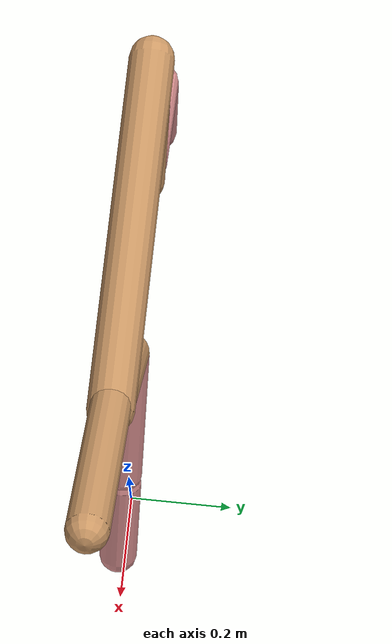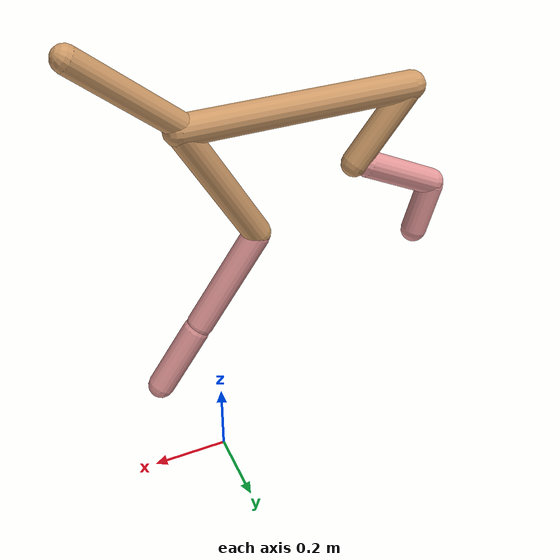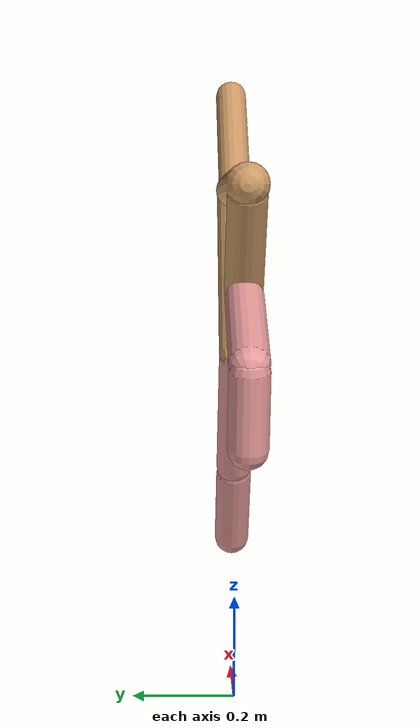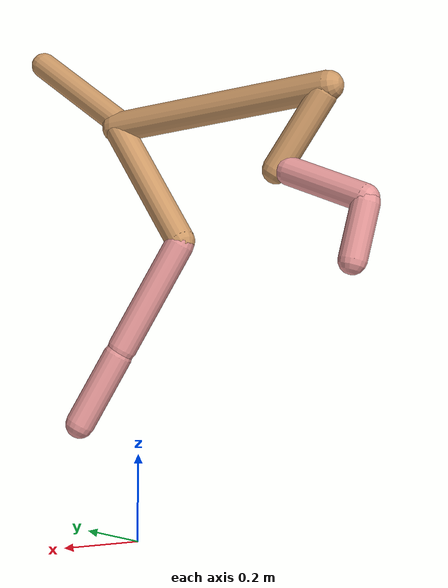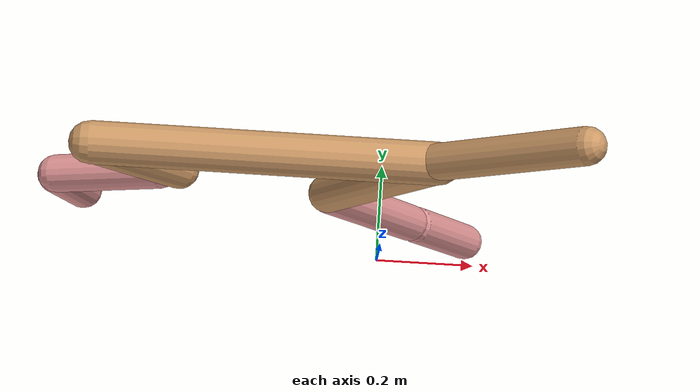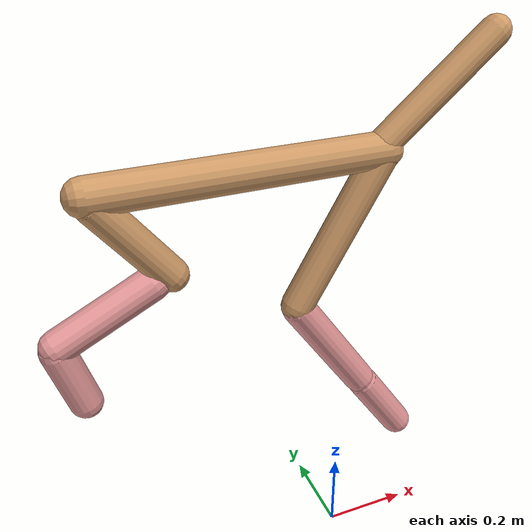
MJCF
<mujoco model="cheetah">
  <compiler angle="radian" coordinate="local" inertiafromgeom="true" settotalmass="14" />
  <default>
    <joint armature=".1" damping=".01" limited="true" solimplimit="0 .8 .03" solreflimit=".02 1" stiffness="8" />
    <geom conaffinity="0" condim="3" contype="1" friction="0.8 .1 .1" rgba="0.8 0.6 .4 1" solimp="0.0 0.8 0.01" solref="0.02 1" />
    <motor ctrllimited="true" ctrlrange="-1 1" />
  </default>
  <size nstack="300000" nuser_geom="1" />
  <option gravity="0 0 -9.81" timestep="0.01" />
  <worldbody>
    <body name="torso" pos="0.0 0.0 0.9929492632251335">
      <joint armature="0" axis="1 0 0" damping="0" limited="false" name="ignorex" pos="0 0 0" stiffness="0" type="slide" />
      <joint armature="0" axis="0 0 1" damping="0" limited="false" name="ignorez" pos="0 0 0" stiffness="0" type="slide" />
      <joint armature="0" axis="0 1 0" damping="0" limited="false" name="ignorey" pos="0 0 0" stiffness="0" type="hinge" />
      <geom fromto="-0.5 0.0 0.0 0.06611792437640829 0.0 0.0" name="torso" size="0.0359339231476472" type="capsule" />
      <geom axisangle="0 1 0 .87" name="head" pos="0.16611792437640827 0.0 0.1" size="0.030727023531875404 0.15" type="capsule" />

      <body name="bthigh" pos="-.5 0 0">
        <joint axis="0 1 0" damping="6" name="bthigh" pos="0 0 0" range="-.52 1.05" stiffness="240" type="hinge" />
        <geom axisangle="0 1 0 -3.8" name="bthigh" pos="0.0734775819030384 0.0 -0.0955208564739499" size="0.033281718134970446 0.10149999999999999" type="capsule" />
        <body name="bshin" pos="0.10695516380607678 0.0 -0.18104171294789978">
          <joint axis="0 1 0" damping="4.5" name="bshin" pos="0 0 0" range="-.785 .785" stiffness="180" type="hinge" />
          <geom axisangle="0 1 0 -2.03" name="bshin" pos="-0.0997507764050038 0.0 -0.0498753882025019" rgba="0.9 0.6 0.6 1" size="0.033281718134970446 0.105" type="capsule" />
          <body name="bfoot" pos="-0.1995015528100076 0.0 -0.0997507764050038">
            <joint axis="0 1 0" damping="3" name="bfoot" pos="0 0 0" range="-.4 .785" stiffness="120" type="hinge" />
            <geom axisangle="0 1 0 -.27" name="bfoot" pos="0.021667753813597694 0.0 -0.07005907066396588" rgba="0.9 0.6 0.6 1" size="0.033281718134970446 0.0658" type="capsule" />
            <inertial mass="10" />
          </body>
        </body>
      </body>
      <body name="fthigh" pos="0.06611792437640829 0.0 0.0">
        <joint axis="0 1 0" damping="4.5" name="fthigh" pos="0 0 0" range="-1.5 0.8" stiffness="180" type="hinge" />
        <geom axisangle="0 1 0 .52" name="fthigh" pos="-0.09053551242308984 0.0 -0.1552037355824397" size="0.03409837751345177 0.17375549373320373" type="capsule" />
        <body name="fshin" pos="-0.18107102484617968 0.0 -0.3104074711648794">
          <joint axis="0 1 0" damping="3" name="fshin" pos="0 0 0" range="-1.2 1.1" stiffness="120" type="hinge" />
          <geom axisangle="0 1 0 -.6" name="fshin" pos="0.08401779999544132 0.0 -0.11633233845522643" rgba="0.9 0.6 0.6 1" size="0.03409837751345177 0.13848182207307966" type="capsule" />
          <body name="ffoot" pos="0.16803559999088263 0.0 -0.23266467691045287">
            <joint axis="0 1 0" damping="1.5" name="ffoot" pos="0 0 0" range="-3.1 -0.3" stiffness="60" type="hinge" />
            <geom axisangle="0 1 0 -.6" name="ffoot" pos="0.056599390854715596 0.0 -0.08804349688511316" rgba="0.9 0.6 0.6 1" size="0.03409837751345177 0.09145025985958091" type="capsule" />
            <inertial mass="10" />
          </body>
        </body>
      </body>
    </body>
  </worldbody>
  <actuator>
    <motor gear="120" joint="bthigh" name="bthigh" />
    <motor gear="90" joint="bshin" name="bshin" />
    <motor gear="60" joint="bfoot" name="bfoot" />
    <motor gear="120" joint="fthigh" name="fthigh" />
    <motor gear="60" joint="fshin" name="fshin" />
    <motor gear="30" joint="ffoot" name="ffoot" />
  </actuator>
</mujoco>
